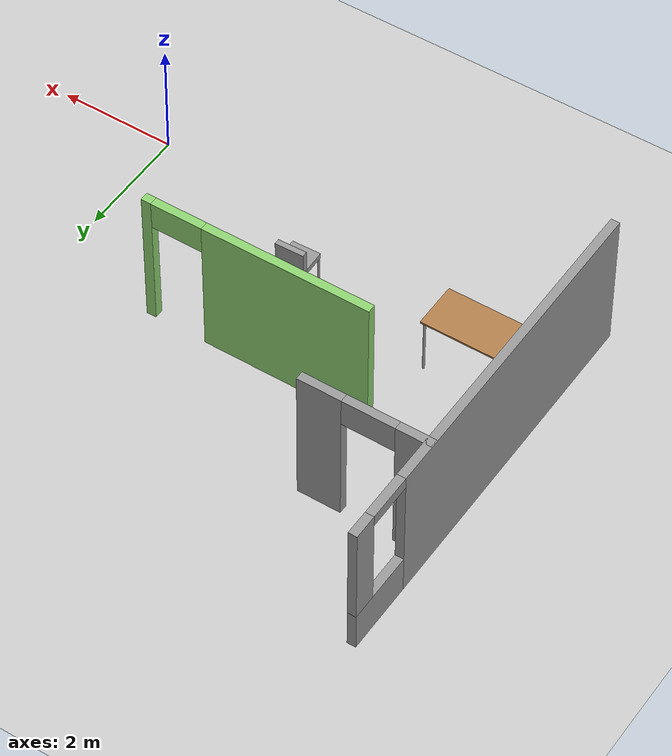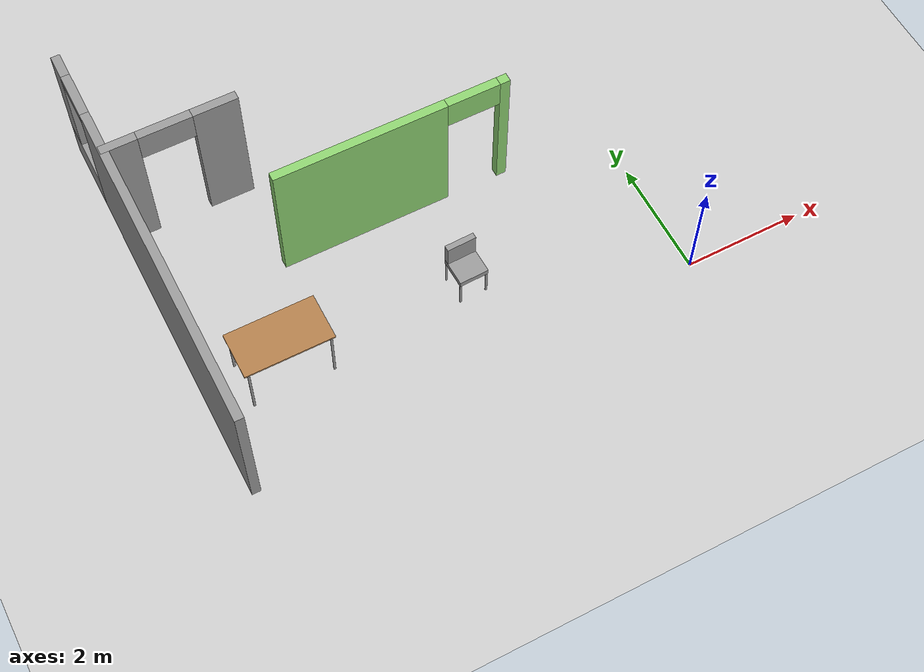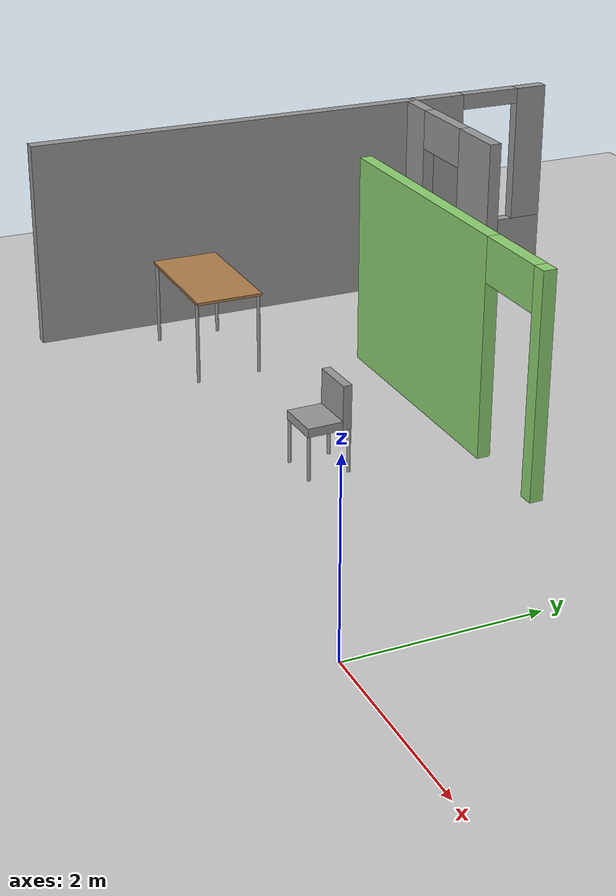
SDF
<sdf version="1.6">
 <world name="default">
  <model name="ground_plane">
   <static>1</static>
   <link name="link">
    <collision name="collision">
     <geometry><plane><normal>0 0 1</normal><size>100 100</size></plane></geometry>
     <surface>
      <contact><collide_bitmask>65535</collide_bitmask></contact>
      <friction><ode><mu>100</mu><mu2>50</mu2></ode></friction>
     </surface>
    </collision>
    <visual name="visual">
     <cast_shadows>0</cast_shadows>
     <geometry><plane><normal>0 0 1</normal><size>100 100</size></plane></geometry>
     <material>
      <script><uri>file://media/materials/scripts/gazebo.material</uri><name>Gazebo/Grey</name></script>
     </material>
    </visual>
   </link>
  </model>
  <model name="dunder_mifflin_scranton_full">
   <pose>4.5312 0.479645 0 0 -0 0</pose>
   <link name="Wall_15">
    <pose>-12.3321 2.625 0 0 -0 1.5708</pose>
    <visual name="Wall_15_Visual_0">
     <pose>-0.612803 0 1.25 0 -0 0</pose>
     <geometry><box><size>5.7744 0.15 2.5</size></box></geometry>
     <material>
      <script><uri>file://media/materials/scripts/gazebo.material</uri><name>Gazebo/Grey</name></script>
      <ambient>1 1 1 1</ambient>
     </material>
     <meta><layer>0</layer></meta>
    </visual>
    <collision name="Wall_15_Collision_0">
     <geometry><box><size>5.7744 0.15 2.5</size></box></geometry>
     <pose>-0.612803 0 1.25 0 -0 0</pose>
    </collision>
    <visual name="Wall_15_Visual_1">
     <pose>2.8872 0 0.35 0 -0 0</pose>
     <geometry><box><size>1.22561 0.15 0.7</size></box></geometry>
     <material>
      <script><uri>file://media/materials/scripts/gazebo.material</uri><name>Gazebo/Grey</name></script>
      <ambient>1 1 1 1</ambient>
     </material>
     <meta><layer>0</layer></meta>
    </visual>
    <collision name="Wall_15_Collision_1">
     <geometry><box><size>1.22561 0.15 0.7</size></box></geometry>
     <pose>2.8872 0 0.35 0 -0 0</pose>
    </collision>
    <visual name="Wall_15_Visual_2">
     <pose>3.2872 0 1.6 0 -0 0</pose>
     <geometry><box><size>0.425605 0.15 1.8</size></box></geometry>
     <material>
      <script><uri>file://media/materials/scripts/gazebo.material</uri><name>Gazebo/Grey</name></script>
      <ambient>1 1 1 1</ambient>
     </material>
     <meta><layer>0</layer></meta>
    </visual>
    <collision name="Wall_15_Collision_2">
     <geometry><box><size>0.425605 0.15 1.8</size></box></geometry>
     <pose>3.2872 0 1.6 0 -0 0</pose>
    </collision>
    <visual name="Wall_15_Visual_3">
     <pose>2.6744 0 2.4 0 -0 0</pose>
     <geometry><box><size>0.8 0.15 0.2</size></box></geometry>
     <material>
      <script><uri>file://media/materials/scripts/gazebo.material</uri><name>Gazebo/Grey</name></script>
      <ambient>1 1 1 1</ambient>
     </material>
     <meta><layer>0</layer></meta>
    </visual>
    <collision name="Wall_15_Collision_3">
     <geometry><box><size>0.8 0.15 0.2</size></box></geometry>
     <pose>2.6744 0 2.4 0 -0 0</pose>
    </collision>
   </link>
   <link name="Wall_20">
    <pose>-8.30724 2.53925 0 0 -0 0</pose>
    <visual name="Wall_20_Visual_0">
     <pose>-0.536103 0 1.25 0 -0 0</pose>
     <geometry><box><size>2.92779 0.15 2.5</size></box></geometry>
     <material>
      <script><uri>file://media/materials/scripts/gazebo.material</uri><name>Gazebo/Grey</name></script>
      <ambient>0.556863 0.823529 0.443137 1</ambient>
     </material>
     <meta><layer>0</layer></meta>
    </visual>
    <collision name="Wall_20_Collision_0">
     <geometry><box><size>2.92779 0.15 2.5</size></box></geometry>
     <pose>-0.536103 0 1.25 0 -0 0</pose>
    </collision>
    <visual name="Wall_20_Visual_1">
     <pose>1.9139 0 1.25 0 -0 0</pose>
     <geometry><box><size>0.172206 0.15 2.5</size></box></geometry>
     <material>
      <script><uri>file://media/materials/scripts/gazebo.material</uri><name>Gazebo/Grey</name></script>
      <ambient>0.556863 0.823529 0.443137 1</ambient>
     </material>
     <meta><layer>0</layer></meta>
    </visual>
    <collision name="Wall_20_Collision_1">
     <geometry><box><size>0.172206 0.15 2.5</size></box></geometry>
     <pose>1.9139 0 1.25 0 -0 0</pose>
    </collision>
    <visual name="Wall_20_Visual_2">
     <pose>1.37779 0 2.25 0 -0 0</pose>
     <geometry><box><size>0.9 0.15 0.5</size></box></geometry>
     <material>
      <script><uri>file://media/materials/scripts/gazebo.material</uri><name>Gazebo/Grey</name></script>
      <ambient>0.556863 0.823529 0.443137 1</ambient>
     </material>
     <meta><layer>0</layer></meta>
    </visual>
    <collision name="Wall_20_Collision_2">
     <geometry><box><size>0.9 0.15 0.5</size></box></geometry>
     <pose>1.37779 0 2.25 0 -0 0</pose>
    </collision>
   </link>
   <link name="Wall_68">
    <pose>-11.2649 4.15459 0 0 -0 3.14159</pose>
    <visual name="Wall_68_Visual_0">
     <pose>-0.747833 0 1.25 0 -0 0</pose>
     <geometry><box><size>0.754334 0.15 2.5</size></box></geometry>
     <material>
      <script><uri>file://media/materials/scripts/gazebo.material</uri><name>Gazebo/Grey</name></script>
      <ambient>1 1 1 1</ambient>
     </material>
     <meta><layer>0</layer></meta>
    </visual>
    <collision name="Wall_68_Collision_0">
     <geometry><box><size>0.754334 0.15 2.5</size></box></geometry>
     <pose>-0.747833 0 1.25 0 -0 0</pose>
    </collision>
    <visual name="Wall_68_Visual_1">
     <pose>0.827167 0 1.25 0 -0 0</pose>
     <geometry><box><size>0.595666 0.15 2.5</size></box></geometry>
     <material>
      <script><uri>file://media/materials/scripts/gazebo.material</uri><name>Gazebo/Grey</name></script>
      <ambient>1 1 1 1</ambient>
     </material>
     <meta><layer>0</layer></meta>
    </visual>
    <collision name="Wall_68_Collision_1">
     <geometry><box><size>0.595666 0.15 2.5</size></box></geometry>
     <pose>0.827167 0 1.25 0 -0 0</pose>
    </collision>
    <visual name="Wall_68_Visual_2">
     <pose>0.079334 0 2.25 0 -0 0</pose>
     <geometry><box><size>0.9 0.15 0.5</size></box></geometry>
     <material>
      <script><uri>file://media/materials/scripts/gazebo.material</uri><name>Gazebo/Grey</name></script>
      <ambient>1 1 1 1</ambient>
     </material>
     <meta><layer>0</layer></meta>
    </visual>
    <collision name="Wall_68_Collision_2">
     <geometry><box><size>0.9 0.15 0.5</size></box></geometry>
     <pose>0.079334 0 2.25 0 -0 0</pose>
    </collision>
   </link>
   <static>1</static>
  </model>
  <model name="chair_0">
   <link name="link_0">
    <inertial>
     <mass>1</mass>
     <inertia><ixx>0.145833</ixx><ixy>0</ixy><ixz>0</ixz><iyy>0.145833</iyy><iyz>0</iyz><izz>0.125</izz></inertia>
    </inertial>
    <pose>-0.23 -0.19667 -0.280001 0 -0 0</pose>
    <visual name="visual">
     <geometry><cylinder><radius>0.02</radius><length>0.5</length></cylinder></geometry>
     <material>
      <lighting>1</lighting>
      <script><uri>file://media/materials/scripts/gazebo.material</uri><name>Gazebo/Grey</name></script>
      <shader type="vertex"><normal_map>__default__</normal_map></shader>
      <ambient>0.3 0.3 0.3 1</ambient>
      <diffuse>0.7 0.7 0.7 1</diffuse>
      <specular>0.01 0.01 0.01 1</specular>
      <emissive>0 0 0 1</emissive>
     </material>
    </visual>
    <collision name="collision">
     <geometry><cylinder><radius>0.02</radius><length>0.5</length></cylinder></geometry>
     <surface>
      <friction>
       <ode><mu>1</mu><mu2>1</mu2><fdir1>0 0 0</fdir1><slip1>0</slip1><slip2>0</slip2></ode>
       <torsional>
        <coefficient>1</coefficient>
        <patch_radius>0</patch_radius>
        <surface_radius>0</surface_radius>
        <use_patch_radius>1</use_patch_radius>
        <ode><slip>0</slip></ode>
       </torsional>
      </friction>
      <bounce><restitution_coefficient>0</restitution_coefficient><threshold>1e+06</threshold></bounce>
      <contact>
       <collide_without_contact>0</collide_without_contact>
       <collide_without_contact_bitmask>1</collide_without_contact_bitmask>
       <collide_bitmask>1</collide_bitmask>
       <ode>
        <soft_cfm>0</soft_cfm>
        <soft_erp>0.2</soft_erp>
        <kp>1e+13</kp>
        <kd>1</kd>
        <max_vel>0.01</max_vel>
        <min_depth>0</min_depth>
       </ode>
       <bullet>
        <split_impulse>1</split_impulse>
        <split_impulse_penetration_threshold>-0.01</split_impulse_penetration_threshold>
        <soft_cfm>0</soft_cfm>
        <soft_erp>0.2</soft_erp>
        <kp>1e+13</kp>
        <kd>1</kd>
       </bullet>
      </contact>
     </surface>
    </collision>
   </link>
   <link name="link_0_clone">
    <inertial>
     <mass>1</mass>
     <inertia><ixx>0.145833</ixx><ixy>0</ixy><ixz>0</ixz><iyy>0.145833</iyy><iyz>0</iyz><izz>0.125</izz></inertia>
    </inertial>
    <pose>0.23 -0.19667 -0.280001 0 -0 0</pose>
    <visual name="visual">
     <geometry><cylinder><radius>0.02</radius><length>0.5</length></cylinder></geometry>
     <material>
      <lighting>1</lighting>
      <script><uri>file://media/materials/scripts/gazebo.material</uri><name>Gazebo/Grey</name></script>
      <shader type="vertex"><normal_map>__default__</normal_map></shader>
      <ambient>0.3 0.3 0.3 1</ambient>
      <diffuse>0.7 0.7 0.7 1</diffuse>
      <specular>0.01 0.01 0.01 1</specular>
      <emissive>0 0 0 1</emissive>
     </material>
    </visual>
    <collision name="collision">
     <geometry><cylinder><radius>0.02</radius><length>0.5</length></cylinder></geometry>
     <surface>
      <friction>
       <ode><mu>1</mu><mu2>1</mu2><fdir1>0 0 0</fdir1><slip1>0</slip1><slip2>0</slip2></ode>
       <torsional>
        <coefficient>1</coefficient>
        <patch_radius>0</patch_radius>
        <surface_radius>0</surface_radius>
        <use_patch_radius>1</use_patch_radius>
        <ode><slip>0</slip></ode>
       </torsional>
      </friction>
      <bounce><restitution_coefficient>0</restitution_coefficient><threshold>1e+06</threshold></bounce>
      <contact>
       <collide_without_contact>0</collide_without_contact>
       <collide_without_contact_bitmask>1</collide_without_contact_bitmask>
       <collide_bitmask>1</collide_bitmask>
       <ode>
        <soft_cfm>0</soft_cfm>
        <soft_erp>0.2</soft_erp>
        <kp>1e+13</kp>
        <kd>1</kd>
        <max_vel>0.01</max_vel>
        <min_depth>0</min_depth>
       </ode>
       <bullet>
        <split_impulse>1</split_impulse>
        <split_impulse_penetration_threshold>-0.01</split_impulse_penetration_threshold>
        <soft_cfm>0</soft_cfm>
        <soft_erp>0.2</soft_erp>
        <kp>1e+13</kp>
        <kd>1</kd>
       </bullet>
      </contact>
     </surface>
    </collision>
   </link>
   <link name="link_0_clone_0">
    <inertial>
     <mass>1</mass>
     <inertia><ixx>0.145833</ixx><ixy>0</ixy><ixz>0</ixz><iyy>0.145833</iyy><iyz>0</iyz><izz>0.125</izz></inertia>
    </inertial>
    <pose>0.23 0.26333 -0.280001 0 -0 0</pose>
    <visual name="visual">
     <geometry><cylinder><radius>0.02</radius><length>0.5</length></cylinder></geometry>
     <material>
      <lighting>1</lighting>
      <script><uri>file://media/materials/scripts/gazebo.material</uri><name>Gazebo/Grey</name></script>
      <shader type="vertex"><normal_map>__default__</normal_map></shader>
      <ambient>0.3 0.3 0.3 1</ambient>
      <diffuse>0.7 0.7 0.7 1</diffuse>
      <specular>0.01 0.01 0.01 1</specular>
      <emissive>0 0 0 1</emissive>
     </material>
    </visual>
    <collision name="collision">
     <geometry><cylinder><radius>0.02</radius><length>0.5</length></cylinder></geometry>
     <surface>
      <friction>
       <ode><mu>1</mu><mu2>1</mu2><fdir1>0 0 0</fdir1><slip1>0</slip1><slip2>0</slip2></ode>
       <torsional>
        <coefficient>1</coefficient>
        <patch_radius>0</patch_radius>
        <surface_radius>0</surface_radius>
        <use_patch_radius>1</use_patch_radius>
        <ode><slip>0</slip></ode>
       </torsional>
      </friction>
      <bounce><restitution_coefficient>0</restitution_coefficient><threshold>1e+06</threshold></bounce>
      <contact>
       <collide_without_contact>0</collide_without_contact>
       <collide_without_contact_bitmask>1</collide_without_contact_bitmask>
       <collide_bitmask>1</collide_bitmask>
       <ode>
        <soft_cfm>0</soft_cfm>
        <soft_erp>0.2</soft_erp>
        <kp>1e+13</kp>
        <kd>1</kd>
        <max_vel>0.01</max_vel>
        <min_depth>0</min_depth>
       </ode>
       <bullet>
        <split_impulse>1</split_impulse>
        <split_impulse_penetration_threshold>-0.01</split_impulse_penetration_threshold>
        <soft_cfm>0</soft_cfm>
        <soft_erp>0.2</soft_erp>
        <kp>1e+13</kp>
        <kd>1</kd>
       </bullet>
      </contact>
     </surface>
    </collision>
   </link>
   <link name="link_0_clone_1">
    <inertial>
     <mass>1</mass>
     <inertia><ixx>0.145833</ixx><ixy>0</ixy><ixz>0</ixz><iyy>0.145833</iyy><iyz>0</iyz><izz>0.125</izz></inertia>
    </inertial>
    <pose>-0.23 0.26333 -0.280001 0 -0 0</pose>
    <visual name="visual">
     <geometry><cylinder><radius>0.02</radius><length>0.5</length></cylinder></geometry>
     <material>
      <lighting>1</lighting>
      <script><uri>file://media/materials/scripts/gazebo.material</uri><name>Gazebo/Grey</name></script>
      <shader type="vertex"><normal_map>__default__</normal_map></shader>
      <ambient>0.3 0.3 0.3 1</ambient>
      <diffuse>0.7 0.7 0.7 1</diffuse>
      <specular>0.01 0.01 0.01 1</specular>
      <emissive>0 0 0 1</emissive>
     </material>
    </visual>
    <collision name="collision">
     <geometry><cylinder><radius>0.02</radius><length>0.5</length></cylinder></geometry>
     <surface>
      <friction>
       <ode><mu>1</mu><mu2>1</mu2><fdir1>0 0 0</fdir1><slip1>0</slip1><slip2>0</slip2></ode>
       <torsional>
        <coefficient>1</coefficient>
        <patch_radius>0</patch_radius>
        <surface_radius>0</surface_radius>
        <use_patch_radius>1</use_patch_radius>
        <ode><slip>0</slip></ode>
       </torsional>
      </friction>
      <bounce><restitution_coefficient>0</restitution_coefficient><threshold>1e+06</threshold></bounce>
      <contact>
       <collide_without_contact>0</collide_without_contact>
       <collide_without_contact_bitmask>1</collide_without_contact_bitmask>
       <collide_bitmask>1</collide_bitmask>
       <ode>
        <soft_cfm>0</soft_cfm>
        <soft_erp>0.2</soft_erp>
        <kp>1e+13</kp>
        <kd>1</kd>
        <max_vel>0.01</max_vel>
        <min_depth>0</min_depth>
       </ode>
       <bullet>
        <split_impulse>1</split_impulse>
        <split_impulse_penetration_threshold>-0.01</split_impulse_penetration_threshold>
        <soft_cfm>0</soft_cfm>
        <soft_erp>0.2</soft_erp>
        <kp>1e+13</kp>
        <kd>1</kd>
       </bullet>
      </contact>
     </surface>
    </collision>
   </link>
   <link name="link_2">
    <inertial>
     <mass>1</mass>
     <inertia>
      <ixx>0.166667</ixx>
      <ixy>0</ixy>
      <ixz>0</ixz>
      <iyy>0.166667</iyy>
      <iyz>0</iyz>
      <izz>0.166667</izz>
     </inertia>
    </inertial>
    <pose>0 0.03333 0.019999 0 -0 0</pose>
    <visual name="visual">
     <geometry><box><size>0.5 0.5 0.1</size></box></geometry>
     <material>
      <lighting>1</lighting>
      <script><uri>file://media/materials/scripts/gazebo.material</uri><name>Gazebo/Grey</name></script>
      <shader type="vertex"><normal_map>__default__</normal_map></shader>
      <ambient>0.3 0.3 0.3 1</ambient>
      <diffuse>0.7 0.7 0.7 1</diffuse>
      <specular>0.01 0.01 0.01 1</specular>
      <emissive>0 0 0 1</emissive>
     </material>
    </visual>
    <collision name="collision">
     <geometry><box><size>0.5 0.5 0.1</size></box></geometry>
     <surface>
      <friction>
       <ode><mu>1</mu><mu2>1</mu2><fdir1>0 0 0</fdir1><slip1>0</slip1><slip2>0</slip2></ode>
       <torsional>
        <coefficient>1</coefficient>
        <patch_radius>0</patch_radius>
        <surface_radius>0</surface_radius>
        <use_patch_radius>1</use_patch_radius>
        <ode><slip>0</slip></ode>
       </torsional>
      </friction>
      <bounce><restitution_coefficient>0</restitution_coefficient><threshold>1e+06</threshold></bounce>
      <contact>
       <collide_without_contact>0</collide_without_contact>
       <collide_without_contact_bitmask>1</collide_without_contact_bitmask>
       <collide_bitmask>1</collide_bitmask>
       <ode>
        <soft_cfm>0</soft_cfm>
        <soft_erp>0.2</soft_erp>
        <kp>1e+13</kp>
        <kd>1</kd>
        <max_vel>0.01</max_vel>
        <min_depth>0</min_depth>
       </ode>
       <bullet>
        <split_impulse>1</split_impulse>
        <split_impulse_penetration_threshold>-0.01</split_impulse_penetration_threshold>
        <soft_cfm>0</soft_cfm>
        <soft_erp>0.2</soft_erp>
        <kp>1e+13</kp>
        <kd>1</kd>
       </bullet>
      </contact>
     </surface>
    </collision>
   </link>
   <link name="link_2_clone">
    <inertial>
     <mass>1</mass>
     <inertia>
      <ixx>0.166667</ixx>
      <ixy>0</ixy>
      <ixz>0</ixz>
      <iyy>0.166667</iyy>
      <iyz>0</iyz>
      <izz>0.166667</izz>
     </inertia>
    </inertial>
    <pose>0 -0.166646 0.220004 1.5707 -0 0</pose>
    <visual name="visual">
     <geometry><box><size>0.5 0.5 0.1</size></box></geometry>
     <material>
      <lighting>1</lighting>
      <script><uri>file://media/materials/scripts/gazebo.material</uri><name>Gazebo/Grey</name></script>
      <shader type="vertex"><normal_map>__default__</normal_map></shader>
      <ambient>0.3 0.3 0.3 1</ambient>
      <diffuse>0.7 0.7 0.7 1</diffuse>
      <specular>0.01 0.01 0.01 1</specular>
      <emissive>0 0 0 1</emissive>
     </material>
    </visual>
    <collision name="collision">
     <geometry><box><size>0.5 0.5 0.1</size></box></geometry>
     <surface>
      <friction>
       <ode><mu>1</mu><mu2>1</mu2><fdir1>0 0 0</fdir1><slip1>0</slip1><slip2>0</slip2></ode>
       <torsional>
        <coefficient>1</coefficient>
        <patch_radius>0</patch_radius>
        <surface_radius>0</surface_radius>
        <use_patch_radius>1</use_patch_radius>
        <ode><slip>0</slip></ode>
       </torsional>
      </friction>
      <bounce><restitution_coefficient>0</restitution_coefficient><threshold>1e+06</threshold></bounce>
      <contact>
       <collide_without_contact>0</collide_without_contact>
       <collide_without_contact_bitmask>1</collide_without_contact_bitmask>
       <collide_bitmask>1</collide_bitmask>
       <ode>
        <soft_cfm>0</soft_cfm>
        <soft_erp>0.2</soft_erp>
        <kp>1e+13</kp>
        <kd>1</kd>
        <max_vel>0.01</max_vel>
        <min_depth>0</min_depth>
       </ode>
       <bullet>
        <split_impulse>1</split_impulse>
        <split_impulse_penetration_threshold>-0.01</split_impulse_penetration_threshold>
        <soft_cfm>0</soft_cfm>
        <soft_erp>0.2</soft_erp>
        <kp>1e+13</kp>
        <kd>1</kd>
       </bullet>
      </contact>
     </surface>
    </collision>
   </link>
   <joint name="link_0_clone_JOINT_2" type="fixed">
    <parent>link_2</parent>
    <child>link_0_clone</child>
    <physics>
     <ode><limit><cfm>0</cfm><erp>0.2</erp></limit><suspension><cfm>0</cfm><erp>0.2</erp></suspension></ode>
    </physics>
   </joint>
   <joint name="link_2_JOINT_1" type="fixed">
    <parent>link_2</parent>
    <child>link_0</child>
    <physics>
     <ode><limit><cfm>0</cfm><erp>0.2</erp></limit><suspension><cfm>0</cfm><erp>0.2</erp></suspension></ode>
    </physics>
   </joint>
   <joint name="link_2_JOINT_3" type="fixed">
    <parent>link_2</parent>
    <child>link_0_clone_0</child>
    <physics>
     <ode><limit><cfm>0</cfm><erp>0.2</erp></limit><suspension><cfm>0</cfm><erp>0.2</erp></suspension></ode>
    </physics>
   </joint>
   <joint name="link_2_JOINT_4" type="fixed">
    <parent>link_2</parent>
    <child>link_0_clone_1</child>
    <physics>
     <ode><limit><cfm>0</cfm><erp>0.2</erp></limit><suspension><cfm>0</cfm><erp>0.2</erp></suspension></ode>
    </physics>
   </joint>
   <joint name="link_2_JOINT_5" type="fixed">
    <parent>link_2</parent>
    <child>link_2_clone</child>
    <physics>
     <ode><limit><cfm>0</cfm><erp>0.2</erp></limit><suspension><cfm>0</cfm><erp>0.2</erp></suspension></ode>
    </physics>
   </joint>
   <static>0</static>
   <pose>-3.3642 1.37027 0.529995 0 0 -3.11162</pose>
  </model>
  <model name="table_12">
   <static>1</static>
   <link name="link">
    <collision name="surface">
     <pose>0 0 1 0 -0 0</pose>
     <geometry><box><size>1.5 0.8 0.03</size></box></geometry>
     <surface><friction><ode><mu>0.6</mu><mu2>0.6</mu2></ode></friction></surface>
    </collision>
    <visual name="visual1">
     <pose>0 0 1 0 -0 0</pose>
     <geometry><box><size>1.5 0.8 0.03</size></box></geometry>
     <material>
      <script><uri>file://media/materials/scripts/gazebo.material</uri><name>Gazebo/Wood</name></script>
     </material>
    </visual>
    <collision name="front_left_leg">
     <pose>0.68 0.38 0.5 0 -0 0</pose>
     <geometry><cylinder><radius>0.02</radius><length>1</length></cylinder></geometry>
    </collision>
    <visual name="front_left_leg">
     <pose>0.68 0.38 0.5 0 -0 0</pose>
     <geometry><cylinder><radius>0.02</radius><length>1</length></cylinder></geometry>
     <material>
      <script><uri>file://media/materials/scripts/gazebo.material</uri><name>Gazebo/Grey</name></script>
     </material>
    </visual>
    <collision name="front_right_leg">
     <pose>0.68 -0.38 0.5 0 -0 0</pose>
     <geometry><cylinder><radius>0.02</radius><length>1</length></cylinder></geometry>
    </collision>
    <visual name="front_right_leg">
     <pose>0.68 -0.38 0.5 0 -0 0</pose>
     <geometry><cylinder><radius>0.02</radius><length>1</length></cylinder></geometry>
     <material>
      <script><uri>file://media/materials/scripts/gazebo.material</uri><name>Gazebo/Grey</name></script>
     </material>
    </visual>
    <collision name="back_right_leg">
     <pose>-0.68 -0.38 0.5 0 -0 0</pose>
     <geometry><cylinder><radius>0.02</radius><length>1</length></cylinder></geometry>
    </collision>
    <visual name="back_right_leg">
     <pose>-0.68 -0.38 0.5 0 -0 0</pose>
     <geometry><cylinder><radius>0.02</radius><length>1</length></cylinder></geometry>
     <material>
      <script><uri>file://media/materials/scripts/gazebo.material</uri><name>Gazebo/Grey</name></script>
     </material>
    </visual>
    <collision name="back_left_leg">
     <pose>-0.68 0.38 0.5 0 -0 0</pose>
     <geometry><cylinder><radius>0.02</radius><length>1</length></cylinder></geometry>
    </collision>
    <visual name="back_left_leg">
     <pose>-0.68 0.38 0.5 0 -0 0</pose>
     <geometry><cylinder><radius>0.02</radius><length>1</length></cylinder></geometry>
     <material>
      <script><uri>file://media/materials/scripts/gazebo.material</uri><name>Gazebo/Grey</name></script>
     </material>
    </visual>
   </link>
   <pose>-6.5503 1.32037 0 0 -0 0</pose>
  </model>
 </world>
</sdf>
